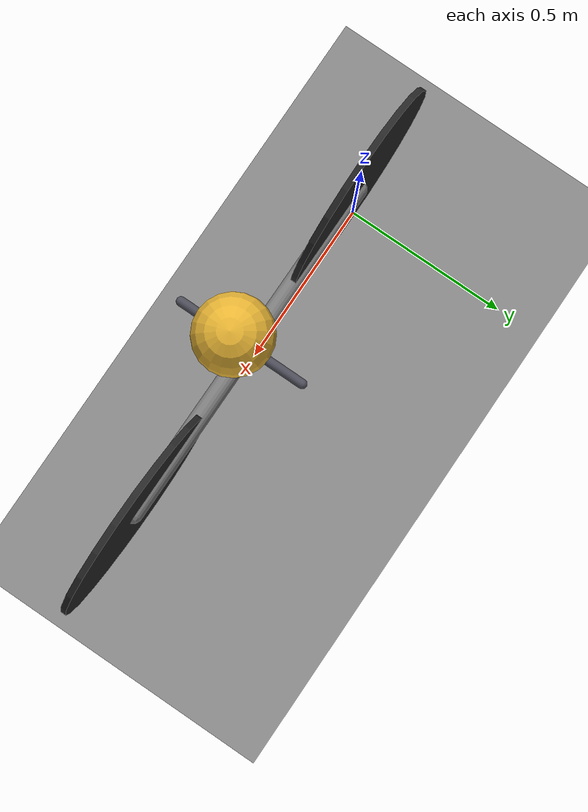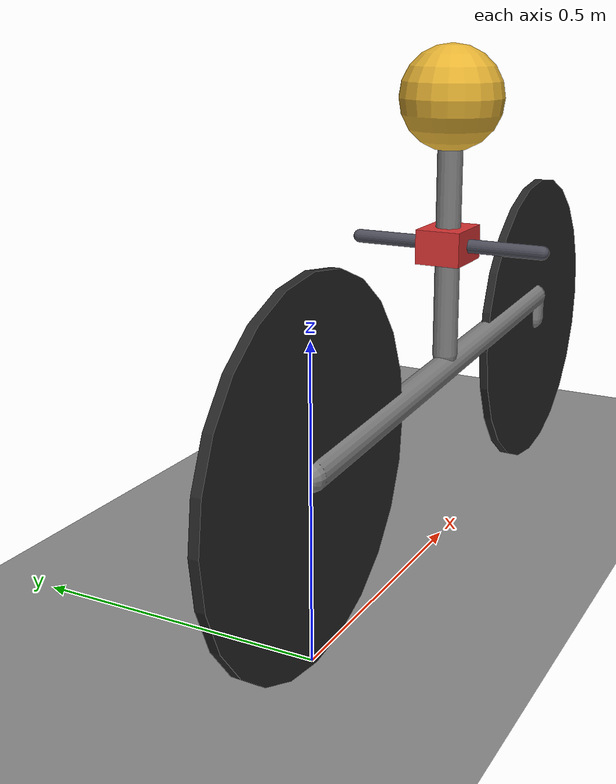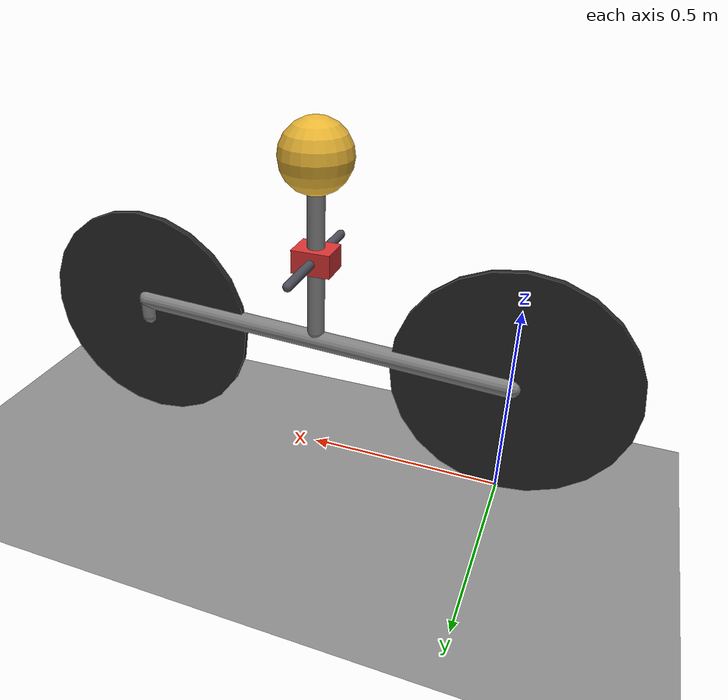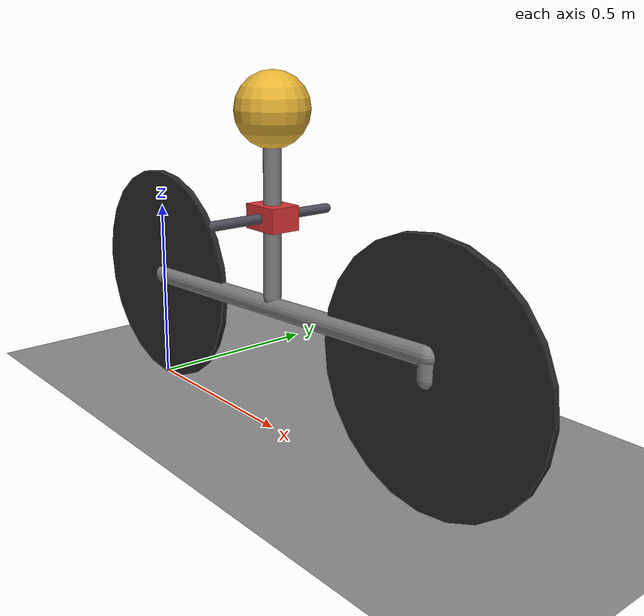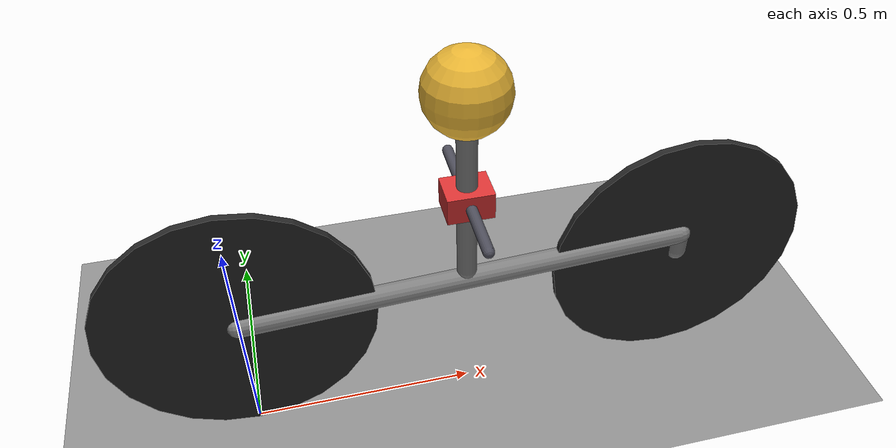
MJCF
<mujoco model="moving_mass_bicycle">
  <!-- 제안서 타겟 플랜트: free fork(조향 무구동) + lateral moving mass, 저속 균형.
       reaction_wheel_bicycle.xml 에서 파생: trail 74mm 포크·얇은 타이어·접촉제외 유지,
       리액션휠/조향모터 제거, 안장 위 횡방향 무게추 슬라이더 추가. -->
  <compiler angle="degree" autolimits="true"/>
  <option timestep="0.004" integrator="implicitfast" gravity="0 0 -9.81"/>

  <default>
    <joint damping="0.02" armature="0.0005"/>
    <geom contype="1" conaffinity="1" friction="1.0 0.005 0.0001"/>
    <default class="wheel">
      <!-- 얇은 타이어(폭 1.6cm): 접지가 점에 가까워 roll 불안정 = 진짜 균형 문제 -->
      <geom type="cylinder" fromto="0 -0.008 0  0 0.008 0" size="0.30"
            rgba="0.15 0.15 0.15 1" friction="1.4 0.01 0.001"/>
    </default>
    <default class="noncolliding">
      <geom contype="0" conaffinity="0"/>
    </default>
  </default>

  <worldbody>
    <light pos="0 0 3" dir="0 0 -1" diffuse="0.8 0.8 0.8"/>
    <geom name="ground" type="plane" size="0 0 0.05" rgba="0.55 0.55 0.55 1"/>

    <body name="frame" pos="0 0 0.30">
      <freejoint name="root"/>
      <site name="imu" pos="0.5 0 0.10"/>

      <geom name="downtube" type="capsule" fromto="0 0 0  1.0 0 0.05" size="0.025" mass="3"/>
      <geom name="seattube" type="capsule" fromto="0.5 0 0.05  0.5 0 0.45" size="0.022" mass="1"/>
      <geom name="rider"    type="sphere"  pos="0.5 0 0.50" size="0.09" mass="4" rgba="0.9 0.7 0.2 1"/>
      <!-- 무게추 레일 (시각+질량, 비충돌) -->
      <geom name="rail" class="noncolliding" type="capsule"
            fromto="0.5 -0.17 0.25  0.5 0.17 0.25" size="0.012" mass="0.2"
            rgba="0.3 0.3 0.35 1"/>

      <!-- rear wheel (driven) -->
      <body name="rear_wheel" pos="0 0 0">
        <joint name="rear_spin" type="hinge" axis="0 1 0"/>
        <geom class="wheel" name="rear_geom" mass="1.2"/>
      </body>

      <!-- moving mass: 안장 위 횡방향 슬라이더 (제어 입력 = 힘). 비충돌 -->
      <body name="mass_slider" pos="0.5 0 0.25">
        <joint name="slide_y" type="slide" axis="0 1 0" range="-0.15 0.15" damping="1.0"/>
        <geom name="mmass" class="noncolliding" type="box"
              size="0.05 0.04 0.03" mass="2.0" rgba="0.85 0.2 0.2 1"/>
      </body>

      <!-- steering fork + front wheel. 조향축 12° 후경(caster): trail ≈ 74mm.
           FREE FORK: 액추에이터 없음 — self-steering 에만 맡김 (관측은 qpos로) -->
      <body name="fork" pos="1.0 0 0.05">
        <joint name="steer" type="hinge" axis="-0.2079 0 0.9781" range="-45 45"/>
        <geom name="fork_geom" type="capsule" fromto="0 0 0  0 0 -0.05" size="0.022" mass="0.6"/>
        <body name="front_wheel" pos="0 0 -0.05">
          <joint name="front_spin" type="hinge" axis="0 1 0"/>
          <geom class="wheel" name="front_geom" mass="1.2"/>
        </body>
      </body>
    </body>
  </worldbody>

  <!-- downtube 끝단이 앞바퀴 내부를 관통하는데 frame↔front_wheel은 조부모-손자라
       자동 접촉제외가 안 됨 (reaction_wheel 플랜트의 유령 브레이크 교훈) -->
  <contact>
    <exclude body1="frame" body2="front_wheel"/>
  </contact>

  <actuator>
    <motor name="slide_force" joint="slide_y"   ctrlrange="-20 20"/>
    <motor name="rear_drive"  joint="rear_spin" ctrlrange="-4 4"/>
  </actuator>

  <sensor>
    <framezaxis  name="frame_up"  objtype="site" objname="imu"/>
    <gyro        name="imu_gyro"  site="imu"/>
    <accelerometer name="imu_acc" site="imu"/>
    <jointpos    name="slide_pos" joint="slide_y"/>
    <jointpos    name="steer_pos" joint="steer"/>
    <jointvel    name="rear_w"    joint="rear_spin"/>
  </sensor>
</mujoco>
